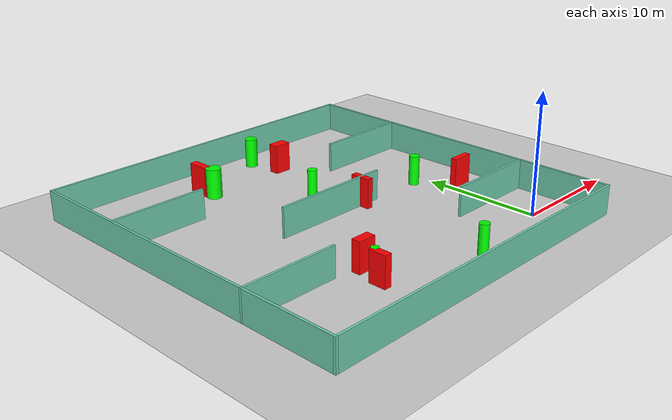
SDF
<sdf version="1.7">
 <world name="default">
  <light name="sun" type="directional">
   <pose>0 0 10 0 -0 0</pose>
   <diffuse>0.8 0.8 0.8 1</diffuse>
   <specular>0.2 0.2 0.2 1</specular>
   <attenuation>
    <range>1000</range>
    <constant>0.9</constant>
    <linear>0.01</linear>
    <quadratic>0.001</quadratic>
   </attenuation>
   <direction>-0.5 0.1 -0.9</direction>
   <spot><inner_angle>0</inner_angle><outer_angle>0</outer_angle><falloff>0</falloff></spot>
  </light>
  <model name="ground_plane">
   <static>1</static>
   <link name="link">
    <collision name="collision">
     <geometry><plane><normal>0 0 1</normal><size>100 100</size></plane></geometry>
     <surface>
      <contact><collide_bitmask>65535</collide_bitmask></contact>
      <friction><ode><mu>100</mu><mu2>50</mu2></ode></friction>
     </surface>
    </collision>
    <visual name="visual">
     <cast_shadows>0</cast_shadows>
     <geometry><plane><normal>0 0 1</normal><size>100 100</size></plane></geometry>
     <material>
      <script><uri>file://media/materials/scripts/gazebo.material</uri><name>Gazebo/Grey</name></script>
     </material>
    </visual>
   </link>
  </model>
  <gravity>0 0 -9.8</gravity>
  <magnetic_field>6e-06 2.3e-05 -4.2e-05</magnetic_field>
  <atmosphere type="adiabatic"/>
  <physics type="ode">
   <max_step_size>0.001</max_step_size>
   <real_time_factor>1</real_time_factor>
   <real_time_update_rate>1000</real_time_update_rate>
  </physics>
  <scene><ambient>0.4 0.4 0.4 1</ambient><background>0.7 0.7 0.7 1</background><shadows>1</shadows></scene>
  <spherical_coordinates>
   <surface_model>EARTH_WGS84</surface_model>
   <latitude_deg>0</latitude_deg>
   <longitude_deg>0</longitude_deg>
   <elevation>0</elevation>
   <heading_deg>0</heading_deg>
  </spherical_coordinates>
  <model name="my_base_walls">
   <link name="Wall_10">
    <collision name="Wall_10_Collision">
     <geometry><box><size>8.2 0.2 2.5</size></box></geometry>
     <pose>0 0 1.25 0 -0 0</pose>
    </collision>
    <visual name="Wall_10_Visual">
     <pose>0 0 1.25 0 -0 0</pose>
     <geometry><box><size>8.2 0.2 2.5</size></box></geometry>
     <material>
      <script><uri>file://media/materials/scripts/gazebo.material</uri><name>Gazebo/Grey</name></script>
      <ambient>0.435294 0.796078 0.67451 1</ambient>
     </material>
     <meta><layer>0</layer></meta>
    </visual>
    <pose>-11 -7 0 0 -0 0</pose>
   </link>
   <link name="Wall_12">
    <collision name="Wall_12_Collision">
     <geometry><box><size>8.2 0.2 2.5</size></box></geometry>
     <pose>0 0 1.25 0 -0 0</pose>
    </collision>
    <visual name="Wall_12_Visual">
     <pose>0 0 1.25 0 -0 0</pose>
     <geometry><box><size>8.2 0.2 2.5</size></box></geometry>
     <material>
      <script><uri>file://media/materials/scripts/gazebo.material</uri><name>Gazebo/Grey</name></script>
      <ambient>0.435294 0.796078 0.67451 1</ambient>
     </material>
     <meta><layer>0</layer></meta>
    </visual>
    <pose>-11 7 0 0 -0 0</pose>
   </link>
   <link name="Wall_14">
    <collision name="Wall_14_Collision">
     <geometry><box><size>8.2 0.2 2.5</size></box></geometry>
     <pose>0 0 1.25 0 -0 0</pose>
    </collision>
    <visual name="Wall_14_Visual">
     <pose>0 0 1.25 0 -0 0</pose>
     <geometry><box><size>8.2 0.2 2.5</size></box></geometry>
     <material>
      <script><uri>file://media/materials/scripts/gazebo.material</uri><name>Gazebo/Grey</name></script>
      <ambient>0.435294 0.796078 0.67451 1</ambient>
     </material>
     <meta><layer>0</layer></meta>
    </visual>
    <pose>11 7 0 0 -0 3.14159</pose>
   </link>
   <link name="Wall_16">
    <collision name="Wall_16_Collision">
     <geometry><box><size>10.2 0.2 2.5</size></box></geometry>
     <pose>0 0 1.25 0 -0 0</pose>
    </collision>
    <visual name="Wall_16_Visual">
     <pose>0 0 1.25 0 -0 0</pose>
     <geometry><box><size>10.2 0.2 2.5</size></box></geometry>
     <material>
      <script><uri>file://media/materials/scripts/gazebo.material</uri><name>Gazebo/Grey</name></script>
      <ambient>0.435294 0.796078 0.67451 1</ambient>
     </material>
     <meta><layer>0</layer></meta>
    </visual>
    <pose>0 0 0 0 -0 3.14159</pose>
   </link>
   <link name="Wall_2">
    <collision name="Wall_2_Collision">
     <geometry><box><size>30.2 0.2 2.5</size></box></geometry>
     <pose>0 0 1.25 0 -0 0</pose>
    </collision>
    <visual name="Wall_2_Visual">
     <pose>0 0 1.25 0 -0 0</pose>
     <geometry><box><size>30.2 0.2 2.5</size></box></geometry>
     <material>
      <script><uri>file://media/materials/scripts/gazebo.material</uri><name>Gazebo/Grey</name></script>
      <ambient>0.435294 0.796078 0.67451 1</ambient>
     </material>
     <meta><layer>0</layer></meta>
    </visual>
    <pose>0 -15 0 0 -0 3.14159</pose>
   </link>
   <link name="Wall_3">
    <collision name="Wall_3_Collision">
     <geometry><box><size>30.2 0.2 2.5</size></box></geometry>
     <pose>0 0 1.25 0 -0 0</pose>
    </collision>
    <visual name="Wall_3_Visual">
     <pose>0 0 1.25 0 -0 0</pose>
     <geometry><box><size>30.2 0.2 2.5</size></box></geometry>
     <material>
      <script><uri>file://media/materials/scripts/gazebo.material</uri><name>Gazebo/Grey</name></script>
      <ambient>0.435294 0.796078 0.67451 1</ambient>
     </material>
     <meta><layer>0</layer></meta>
    </visual>
    <pose>-15 0 0 0 -0 1.5708</pose>
   </link>
   <link name="Wall_4">
    <collision name="Wall_4_Collision">
     <geometry><box><size>30.2 0.2 2.5</size></box></geometry>
     <pose>0 0 1.25 0 -0 0</pose>
    </collision>
    <visual name="Wall_4_Visual">
     <pose>0 0 1.25 0 -0 0</pose>
     <geometry><box><size>30.2 0.2 2.5</size></box></geometry>
     <material>
      <script><uri>file://media/materials/scripts/gazebo.material</uri><name>Gazebo/Grey</name></script>
      <ambient>0.435294 0.796078 0.67451 1</ambient>
     </material>
     <meta><layer>0</layer></meta>
    </visual>
    <pose>0 15 0 0 -0 0</pose>
   </link>
   <link name="Wall_6">
    <collision name="Wall_6_Collision">
     <geometry><box><size>30.2 0.2 2.5</size></box></geometry>
     <pose>0 0 1.25 0 -0 0</pose>
    </collision>
    <visual name="Wall_6_Visual">
     <pose>0 0 1.25 0 -0 0</pose>
     <geometry><box><size>30.2 0.2 2.5</size></box></geometry>
     <material>
      <script><uri>file://media/materials/scripts/gazebo.material</uri><name>Gazebo/Grey</name></script>
      <ambient>0.435294 0.796078 0.67451 1</ambient>
     </material>
     <meta><layer>0</layer></meta>
    </visual>
    <pose>15 0 0 0 -0 1.5708</pose>
   </link>
   <link name="Wall_8">
    <collision name="Wall_8_Collision">
     <geometry><box><size>8.2 0.2 2.5</size></box></geometry>
     <pose>0 0 1.25 0 -0 0</pose>
    </collision>
    <visual name="Wall_8_Visual">
     <pose>0 0 1.25 0 -0 0</pose>
     <geometry><box><size>8.2 0.2 2.5</size></box></geometry>
     <material>
      <script><uri>file://media/materials/scripts/gazebo.material</uri><name>Gazebo/Grey</name></script>
      <ambient>0.435294 0.796078 0.67451 1</ambient>
     </material>
     <meta><layer>0</layer></meta>
    </visual>
    <pose>11 -7 0 0 -0 3.14159</pose>
   </link>
   <static>1</static>
   <pose>-11 11 0 0 -0 0</pose>
  </model>
  <model name="cylinder1">
   <static>1</static>
   <link name="link">
    <inertial>
     <mass>1</mass>
     <inertia><ixx>0.5</ixx><ixy>0</ixy><ixz>0</ixz><iyy>0.5</iyy><iyz>0</iyz><izz>1</izz></inertia>
    </inertial>
    <collision name="collision">
     <geometry><cylinder><radius>0.6322038454390266</radius><length>2.5</length></cylinder></geometry>
    </collision>
    <visual name="visual">
     <geometry><cylinder><radius>0.6322038454390266</radius><length>2.5</length></cylinder></geometry>
     <material>
      <ambient>0 1 0 1</ambient>
      <diffuse>0 1 0 1</diffuse>
      <specular>0.1 0.1 0.1 1</specular>
      <emissive>0 0 0 0</emissive>
     </material>
    </visual>
   </link>
   <pose>-14.631488108855141 20.80956292833015 1.25 0 0 0</pose>
  </model>
  <model name="cylinder2">
   <static>1</static>
   <link name="link">
    <inertial>
     <mass>1</mass>
     <inertia><ixx>0.5</ixx><ixy>0</ixy><ixz>0</ixz><iyy>0.5</iyy><iyz>0</iyz><izz>1</izz></inertia>
    </inertial>
    <collision name="collision">
     <geometry><cylinder><radius>0.399978904401753</radius><length>2.5</length></cylinder></geometry>
    </collision>
    <visual name="visual">
     <geometry><cylinder><radius>0.399978904401753</radius><length>2.5</length></cylinder></geometry>
     <material>
      <ambient>0 1 0 1</ambient>
      <diffuse>0 1 0 1</diffuse>
      <specular>0.1 0.1 0.1 1</specular>
      <emissive>0 0 0 0</emissive>
     </material>
    </visual>
   </link>
   <pose>-8.199693624564587 -1.205929264274551 1.25 0 0 0</pose>
  </model>
  <model name="cylinder3">
   <static>1</static>
   <link name="link">
    <inertial>
     <mass>1</mass>
     <inertia><ixx>0.5</ixx><ixy>0</ixy><ixz>0</ixz><iyy>0.5</iyy><iyz>0</iyz><izz>1</izz></inertia>
    </inertial>
    <collision name="collision">
     <geometry><cylinder><radius>0.30695512250039514</radius><length>2.5</length></cylinder></geometry>
    </collision>
    <visual name="visual">
     <geometry><cylinder><radius>0.30695512250039514</radius><length>2.5</length></cylinder></geometry>
     <material>
      <ambient>0 1 0 1</ambient>
      <diffuse>0 1 0 1</diffuse>
      <specular>0.1 0.1 0.1 1</specular>
      <emissive>0 0 0 0</emissive>
     </material>
    </visual>
   </link>
   <pose>-16.31849992314925 1.8032968925942852 1.25 0 0 0</pose>
  </model>
  <model name="cylinder4">
   <static>1</static>
   <link name="link">
    <inertial>
     <mass>1</mass>
     <inertia><ixx>0.5</ixx><ixy>0</ixy><ixz>0</ixz><iyy>0.5</iyy><iyz>0</iyz><izz>1</izz></inertia>
    </inertial>
    <collision name="collision">
     <geometry><cylinder><radius>0.39092431893020513</radius><length>2.5</length></cylinder></geometry>
    </collision>
    <visual name="visual">
     <geometry><cylinder><radius>0.39092431893020513</radius><length>2.5</length></cylinder></geometry>
     <material>
      <ambient>0 1 0 1</ambient>
      <diffuse>0 1 0 1</diffuse>
      <specular>0.1 0.1 0.1 1</specular>
      <emissive>0 0 0 0</emissive>
     </material>
    </visual>
   </link>
   <pose>-9.361227565933095 14.821445346253707 1.25 0 0 0</pose>
  </model>
  <model name="cylinder5">
   <static>1</static>
   <link name="link">
    <inertial>
     <mass>1</mass>
     <inertia><ixx>0.5</ixx><ixy>0</ixy><ixz>0</ixz><iyy>0.5</iyy><iyz>0</iyz><izz>1</izz></inertia>
    </inertial>
    <collision name="collision">
     <geometry><cylinder><radius>0.5199186154634736</radius><length>2.5</length></cylinder></geometry>
    </collision>
    <visual name="visual">
     <geometry><cylinder><radius>0.5199186154634736</radius><length>2.5</length></cylinder></geometry>
     <material>
      <ambient>0 1 0 1</ambient>
      <diffuse>0 1 0 1</diffuse>
      <specular>0.1 0.1 0.1 1</specular>
      <emissive>0 0 0 0</emissive>
     </material>
    </visual>
   </link>
   <pose>-7.904250718319883 23.96966502355255 1.25 0 0 0</pose>
  </model>
  <model name="cylinder6">
   <static>1</static>
   <link name="link">
    <inertial>
     <mass>1</mass>
     <inertia><ixx>0.5</ixx><ixy>0</ixy><ixz>0</ixz><iyy>0.5</iyy><iyz>0</iyz><izz>1</izz></inertia>
    </inertial>
    <collision name="collision">
     <geometry><cylinder><radius>0.4297712318324278</radius><length>2.5</length></cylinder></geometry>
    </collision>
    <visual name="visual">
     <geometry><cylinder><radius>0.4297712318324278</radius><length>2.5</length></cylinder></geometry>
     <material>
      <ambient>0 1 0 1</ambient>
      <diffuse>0 1 0 1</diffuse>
      <specular>0.1 0.1 0.1 1</specular>
      <emissive>0 0 0 0</emissive>
     </material>
    </visual>
   </link>
   <pose>-1.3145622054808292 10.879287077607906 1.25 0 0 0</pose>
  </model>
  <model name="box1">
   <static>1</static>
   <link name="link">
    <inertial>
     <mass>1</mass>
     <inertia><ixx>0.083</ixx><ixy>0</ixy><ixz>0</ixz><iyy>0.083</iyy><iyz>0</iyz><izz>0.083</izz></inertia>
    </inertial>
    <collision name="collision">
     <geometry><box><size>1.5245843612122156 0.7596797573043347 2.5</size></box></geometry>
    </collision>
    <visual name="visual">
     <geometry><box><size>1.5245843612122156 0.7596797573043347 2.5</size></box></geometry>
     <material>
      <ambient>1 0 0 1</ambient>
      <diffuse>1 0 0 1</diffuse>
      <specular>0.1 0.1 0.1 1</specular>
      <emissive>0 0 0 0</emissive>
     </material>
    </visual>
    <sensor name="my_contact" type="contact">
     <contact><collision>box_collision</collision><topic>__default_topic__</topic></contact>
    </sensor>
   </link>
   <pose>-15.717484592370305 3.395814457054753 1.25 0 0 0</pose>
  </model>
  <model name="box2">
   <static>1</static>
   <link name="link">
    <inertial>
     <mass>1</mass>
     <inertia><ixx>0.083</ixx><ixy>0</ixy><ixz>0</ixz><iyy>0.083</iyy><iyz>0</iyz><izz>0.083</izz></inertia>
    </inertial>
    <collision name="collision">
     <geometry><box><size>0.6046726225487257 1.4737422713778963 2.5</size></box></geometry>
    </collision>
    <visual name="visual">
     <geometry><box><size>0.6046726225487257 1.4737422713778963 2.5</size></box></geometry>
     <material>
      <ambient>1 0 0 1</ambient>
      <diffuse>1 0 0 1</diffuse>
      <specular>0.1 0.1 0.1 1</specular>
      <emissive>0 0 0 0</emissive>
     </material>
    </visual>
    <sensor name="my_contact" type="contact">
     <contact><collision>box_collision</collision><topic>__default_topic__</topic></contact>
    </sensor>
   </link>
   <pose>-16.541132085367416 1.1431154684677658 1.25 0 0 0</pose>
  </model>
  <model name="box3">
   <static>1</static>
   <link name="link">
    <inertial>
     <mass>1</mass>
     <inertia><ixx>0.083</ixx><ixy>0</ixy><ixz>0</ixz><iyy>0.083</iyy><iyz>0</iyz><izz>0.083</izz></inertia>
    </inertial>
    <collision name="collision">
     <geometry><box><size>1.4594146002463833 0.8814498284276358 2.5</size></box></geometry>
    </collision>
    <visual name="visual">
     <geometry><box><size>1.4594146002463833 0.8814498284276358 2.5</size></box></geometry>
     <material>
      <ambient>1 0 0 1</ambient>
      <diffuse>1 0 0 1</diffuse>
      <specular>0.1 0.1 0.1 1</specular>
      <emissive>0 0 0 0</emissive>
     </material>
    </visual>
    <sensor name="my_contact" type="contact">
     <contact><collision>box_collision</collision><topic>__default_topic__</topic></contact>
    </sensor>
   </link>
   <pose>-7.019087013025679 21.260566209345562 1.25 0 0 0</pose>
  </model>
  <model name="box4">
   <static>1</static>
   <link name="link">
    <inertial>
     <mass>1</mass>
     <inertia><ixx>0.083</ixx><ixy>0</ixy><ixz>0</ixz><iyy>0.083</iyy><iyz>0</iyz><izz>0.083</izz></inertia>
    </inertial>
    <collision name="collision">
     <geometry><box><size>1.8799735026739102 0.5228432678280877 2.5</size></box></geometry>
    </collision>
    <visual name="visual">
     <geometry><box><size>1.8799735026739102 0.5228432678280877 2.5</size></box></geometry>
     <material>
      <ambient>1 0 0 1</ambient>
      <diffuse>1 0 0 1</diffuse>
      <specular>0.1 0.1 0.1 1</specular>
      <emissive>0 0 0 0</emissive>
     </material>
    </visual>
    <sensor name="my_contact" type="contact">
     <contact><collision>box_collision</collision><topic>__default_topic__</topic></contact>
    </sensor>
   </link>
   <pose>1.2429187531371682 8.025378942724384 1.25 0 0 0</pose>
  </model>
  <model name="box5">
   <static>1</static>
   <link name="link">
    <inertial>
     <mass>1</mass>
     <inertia><ixx>0.083</ixx><ixy>0</ixy><ixz>0</ixz><iyy>0.083</iyy><iyz>0</iyz><izz>0.083</izz></inertia>
    </inertial>
    <collision name="collision">
     <geometry><box><size>0.5132324672596436 1.7374564341235748 2.5</size></box></geometry>
    </collision>
    <visual name="visual">
     <geometry><box><size>0.5132324672596436 1.7374564341235748 2.5</size></box></geometry>
     <material>
      <ambient>1 0 0 1</ambient>
      <diffuse>1 0 0 1</diffuse>
      <specular>0.1 0.1 0.1 1</specular>
      <emissive>0 0 0 0</emissive>
     </material>
    </visual>
    <sensor name="my_contact" type="contact">
     <contact><collision>box_collision</collision><topic>__default_topic__</topic></contact>
    </sensor>
   </link>
   <pose>-7.671952160366917 10.934819732636571 1.25 0 0 0</pose>
  </model>
  <model name="box6">
   <static>1</static>
   <link name="link">
    <inertial>
     <mass>1</mass>
     <inertia><ixx>0.083</ixx><ixy>0</ixy><ixz>0</ixz><iyy>0.083</iyy><iyz>0</iyz><izz>0.083</izz></inertia>
    </inertial>
    <collision name="collision">
     <geometry><box><size>0.6283214958027667 1.8066455289499674 2.5</size></box></geometry>
    </collision>
    <visual name="visual">
     <geometry><box><size>0.6283214958027667 1.8066455289499674 2.5</size></box></geometry>
     <material>
      <ambient>1 0 0 1</ambient>
      <diffuse>1 0 0 1</diffuse>
      <specular>0.1 0.1 0.1 1</specular>
      <emissive>0 0 0 0</emissive>
     </material>
    </visual>
    <sensor name="my_contact" type="contact">
     <contact><collision>box_collision</collision><topic>__default_topic__</topic></contact>
    </sensor>
   </link>
   <pose>-14.900668078910154 22.113424021232746 1.25 0 0 0</pose>
  </model>
 </world>
</sdf>
